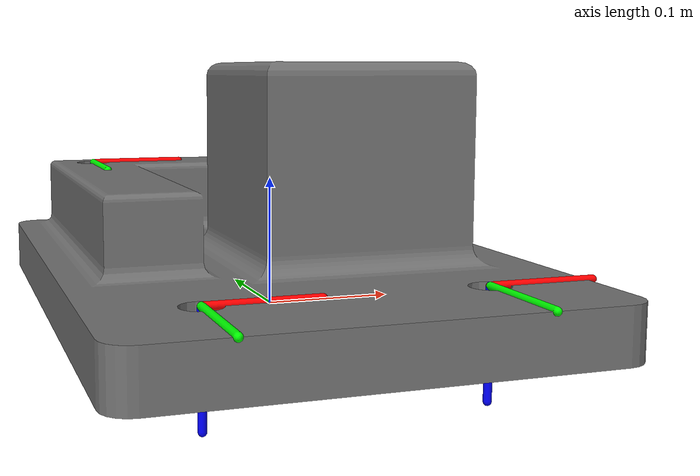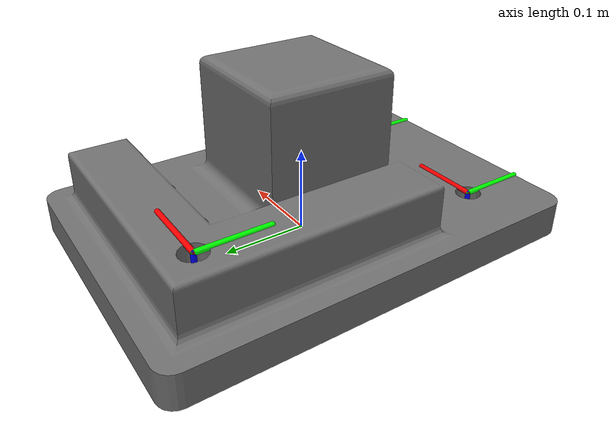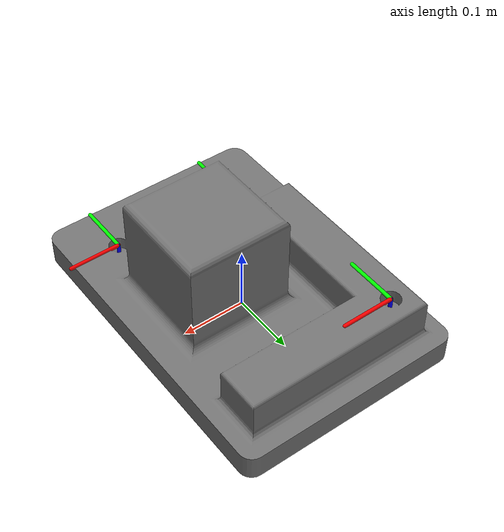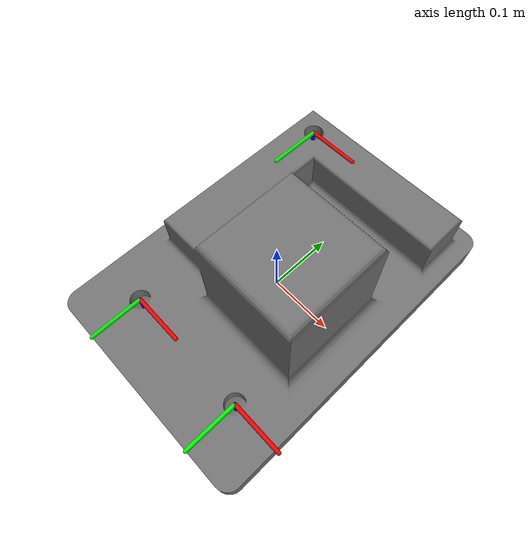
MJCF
<mujoco model="small_tool">
  <compiler angle="radian"/>
  <option timestep="0.01"/>

  <visual>
    <headlight diffuse="0.6 0.6 0.6" ambient="0.1 0.1 0.1" specular="0 0 0"/>
    <rgba haze="0.15 0.25 0.35 1"/>
    <global azimuth="120" elevation="-20"/>
  </visual>

  <asset>
    <mesh name="screw_plate_mesh" file="Screwing_plate.obj"/>
  </asset>

  <default>
    <geom condim="3" friction="1 0.5 0.01" solref="0.02 1" solimp="0.9 0.95 0.001"/>
  </default>

  <worldbody>
    <body name="screw_plate" pos="0 0 0">

      <geom type="mesh" mesh="screw_plate_mesh" rgba="0.45 0.45 0.45 1" contype="0" conaffinity="0" group="0"/>
      <!-- Base plate -->
      <geom name="base_plate" type="box" size="0.175 0.25 0.02" pos="0 0 0.02" rgba="0.8 0.2 0.2 1" contype="1" conaffinity="1" group="3"/>

      <!-- Center cube -->
      <geom name="center_cube" type="box" size="0.08 0.08 0.075" pos="0.045 -0.02 0.115" rgba="0.2 0.8 0.2 1" contype="1" conaffinity="1" group="3"/>

      <!-- Longer side -->
      <geom name="longer_side" type="box" size="0.035 0.15 0.03" pos="-0.11 0.07 0.07" rgba="0.2 0.2 0.8 1" contype="1" conaffinity="1" group="3"/>

      <!-- Shorter side -->
      <geom name="shorter_side" type="box" size="0.11 0.035 0.03" pos="0.035 0.185 0.07" rgba="0.2 0.2 0.8 1" contype="1" conaffinity="1" group="3"/>

      <!-- Definition of the sites -->
      <!-- center of the piece -->
      <site name="mount_plate_site" pos="0.0 0.0 0.0" size="0.005" rgba="1 0 0 1"/>

      <!-- Hole 1 -->
      <body name="hole_1_frame_body" pos="0.1 -0.17 0.04" quat="0 1 0 0">
        <geom type="capsule" fromto="0 0 0 0.08 0 0" rgba="1 0 0 1" size="0.003" contype="0" conaffinity="0"/>
        <geom type="capsule" fromto="0 0 0 0 0.08 0" rgba="0 1 0 1" size="0.003" contype="0" conaffinity="0"/>
        <geom type="capsule" fromto="0 0 0 0 0 0.08" rgba="0 0 1 1" size="0.003" contype="0" conaffinity="0"/>
      </body>

      <!-- Hole 2 -->
      <body name="hole_2_frame_body" pos="-0.1 -0.17 0.04" quat="0 1 0 0">
        <geom type="capsule" fromto="0 0 0 0.08 0 0" rgba="1 0 0 1" size="0.003" contype="0" conaffinity="0"/>
        <geom type="capsule" fromto="0 0 0 0 0.08 0" rgba="0 1 0 1" size="0.003" contype="0" conaffinity="0"/>
        <geom type="capsule" fromto="0 0 0 0 0 0.08" rgba="0 0 1 1" size="0.003" contype="0" conaffinity="0"/>
      </body>

      <!-- Hole 3 -->
      <body name="hole_3_frame_body" pos="-0.11 0.185 0.1" quat="0 1 0 0">
        <geom type="capsule" fromto="0 0 0 0.08 0 0" rgba="1 0 0 1" size="0.003" contype="0" conaffinity="0"/>
        <geom type="capsule" fromto="0 0 0 0 0.08 0" rgba="0 1 0 1" size="0.003" contype="0" conaffinity="0"/>
        <geom type="capsule" fromto="0 0 0 0 0 0.08" rgba="0 0 1 1" size="0.003" contype="0" conaffinity="0"/>
      </body>

    </body>
  </worldbody>
</mujoco>
